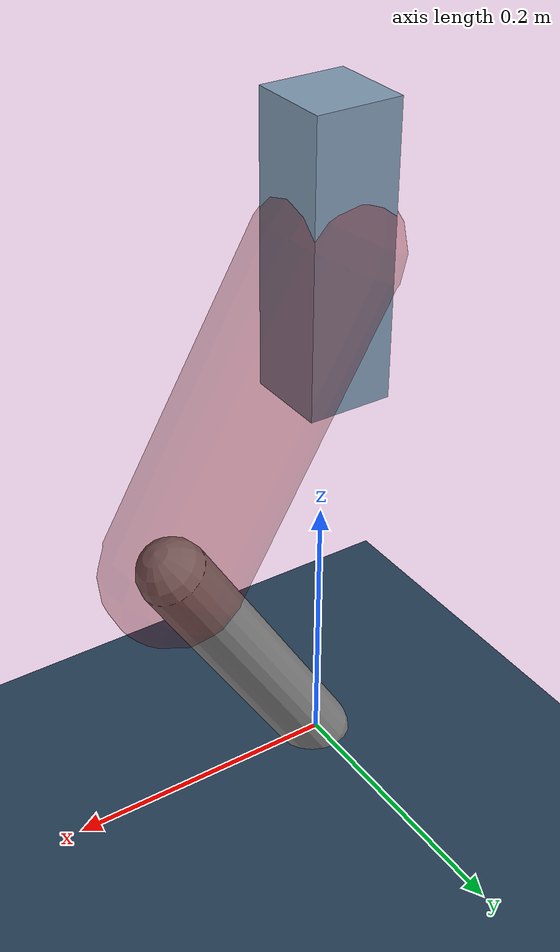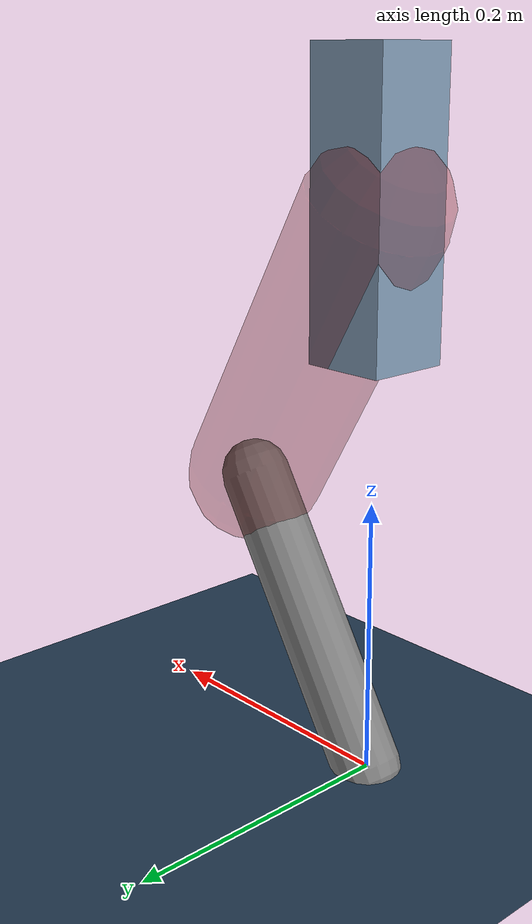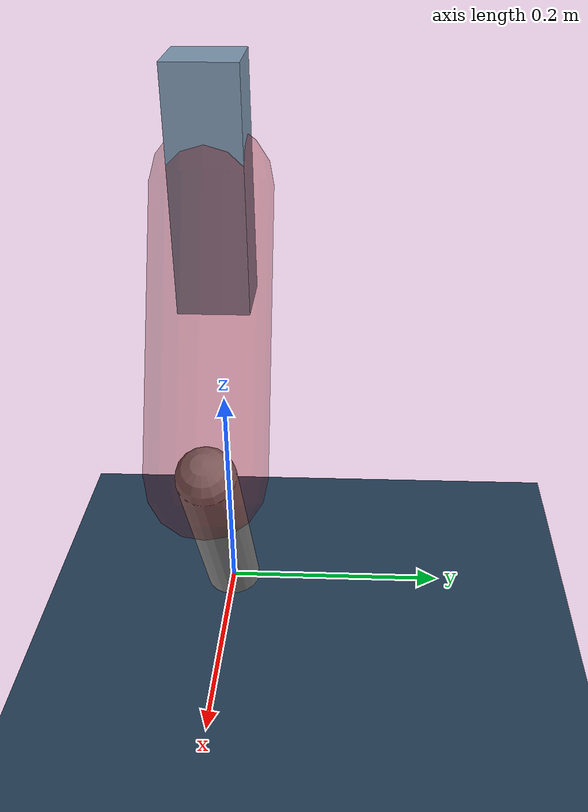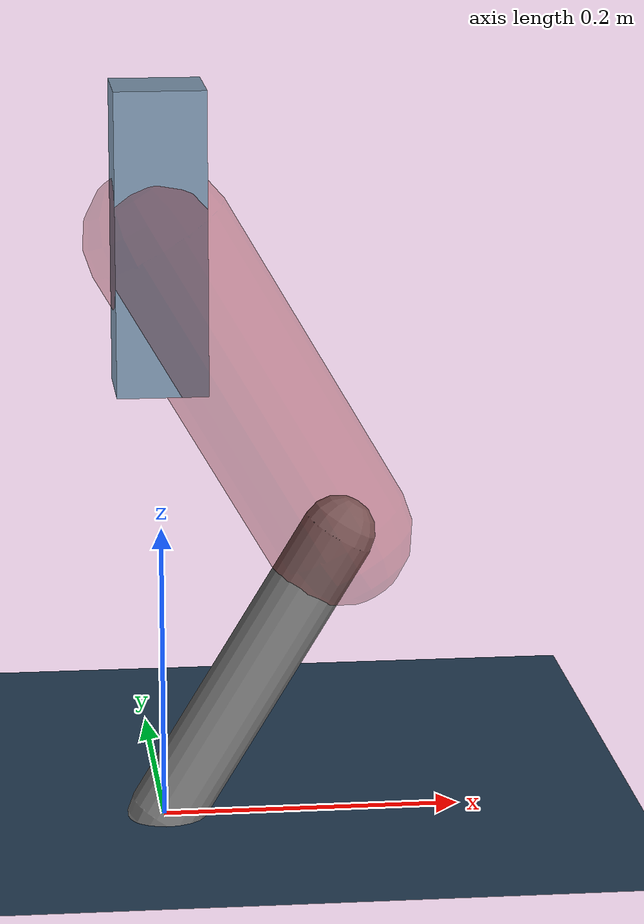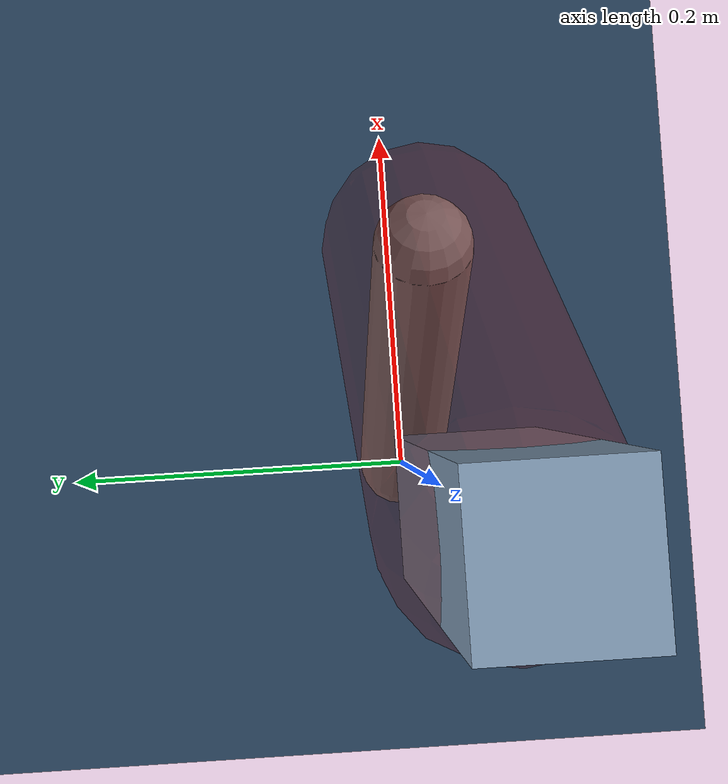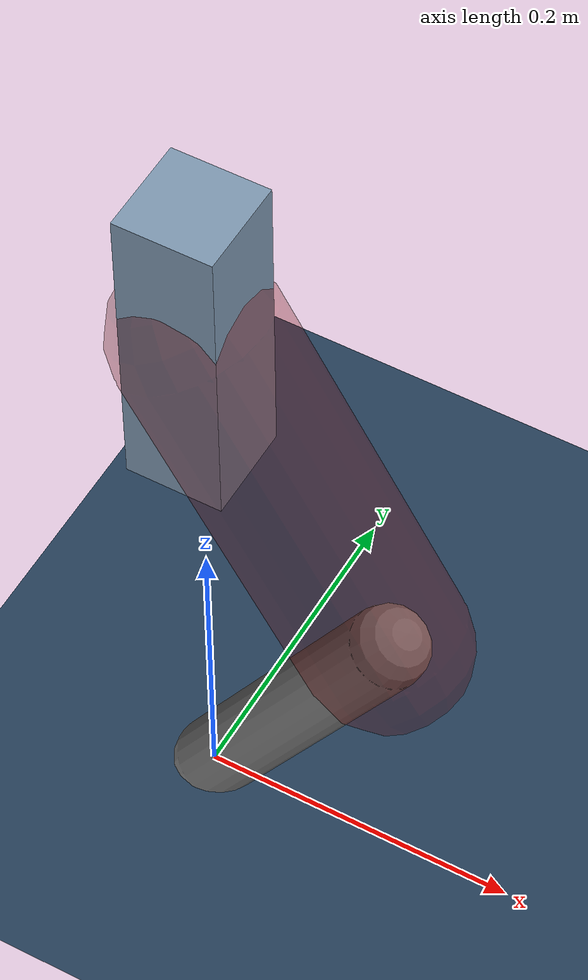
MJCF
<mujoco model="Hopper2D">
	<compiler inertiafromgeom="true" angle="radian" />
	<option timestep="0.001" integrator="implicit" cone="elliptic" solver="Newton" tolerance="1e-10" />

	<default>
		<geom contype="1" conaffinity="1" condim="3" friction="2 0.005 0.0001" solref="0.005 1" />
		<joint limited="true" damping="0.1" />
	</default>

	<asset>
		<texture name="skybox" type="skybox" builtin="gradient" rgb1=".4 .6 .8" rgb2="0 0 0" width="800" height="800" />
		<texture name="grid" type="2d" builtin="checker" rgb1=".1 .2 .3" rgb2=".2 .3 .4" width="300" height="300" mark="edge" markrgb=".2 .3 .4" />
		<material name="ground" texture="grid" texrepeat="1 1" texuniform="true" reflectance="0.1" />
		<material name="leg" rgba="0.5 0.6 0.7 1" />
	</asset>

	<worldbody>

		<geom name="floor" type="plane" size="5 5 0.25" material="ground" />

		<light directional="false" diffuse="0.8 0.8 0.8" specular="0.3 0.3 0.3" pos="0 0 2" dir="0 0 -1" />
		<light mode="targetbodycom" target="base" directional="false" diffuse="0.8 0.8 0.8" specular="0.3 0.3 0.3" pos="0 0 2" dir="0 0 -1" />

		<camera name="fixed" pos="0 -2 1" xyaxes="1 0 0 0 0 1" />
		<camera name="tracking" mode="trackcom" pos="0 -3 1" />

		<body name="root" pos="0 0 0.39643896108839904">
			<joint name="slide_x" type="slide" axis="1 0 0" range="-100 100" />
			<joint name="slide_z" type="slide" axis="0 0 1" range="0 10" />

			<body name="base" pos="0 0 0">
				<geom name="torso" type="box" size="0.03 0.03 0.1" mass="2.297" material="leg" />

				<body name="link1" pos="0 0 0" euler="0 1.0412623866183848 0">
					<joint type="hinge" axis="0 -1 0" pos="0 0 0" name="hinge1" limited="true" range="-3.14 3.14" stiffness="0" damping="0.1" />
					<geom name="thigh" type="capsule" fromto="0 0 0 0.233988786348177 0 0" size="0.05" rgba="0.5 0 0 0.3" mass="0.8151719658704425" />

					<body name="link2" pos="0.233988786348177 0 0" euler="0 1.0755937236832447 0">
						<joint type="hinge" axis="0 -1 0" pos="0 0 0" name="hinge2" limited="true" range="-3.14 3.14" stiffness="0" damping="0.1" />
						<geom name="shank" type="capsule" fromto="0 0 0 0.227593982691102 0 0" size="0.025" mass="0.4239751861528816" />

					</body>
				</body>
			</body>
		</body>
	</worldbody>

	<actuator>
		<motor name="torque1" joint="hinge1" ctrlrange="-63.920720016676576 63.920720016676576" ctrllimited="true" gear="1" />
		<motor name="torque2" joint="hinge2" ctrlrange="-27.75565796735847 27.75565796735847" ctrllimited="true" gear="1" />
	</actuator>
</mujoco>
